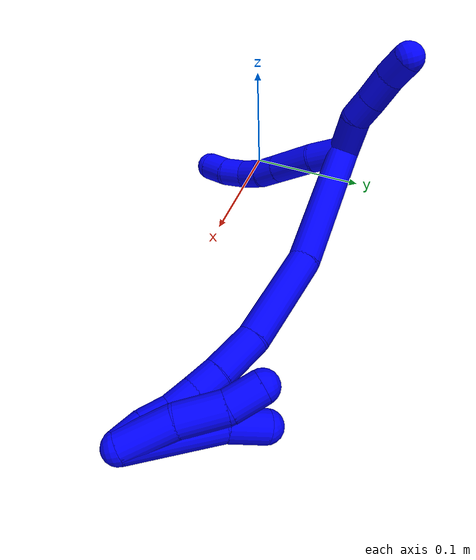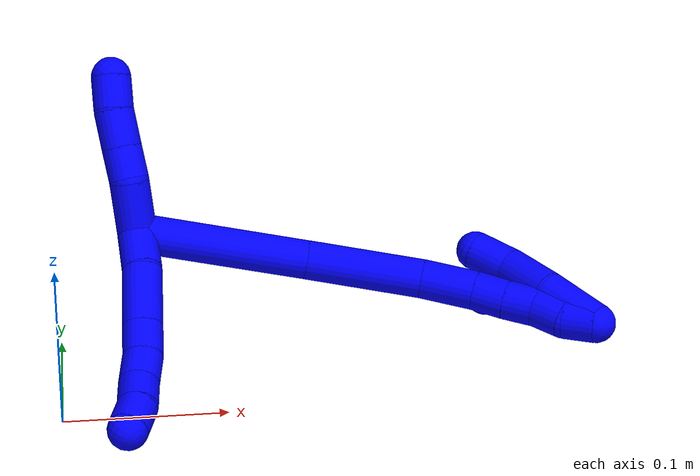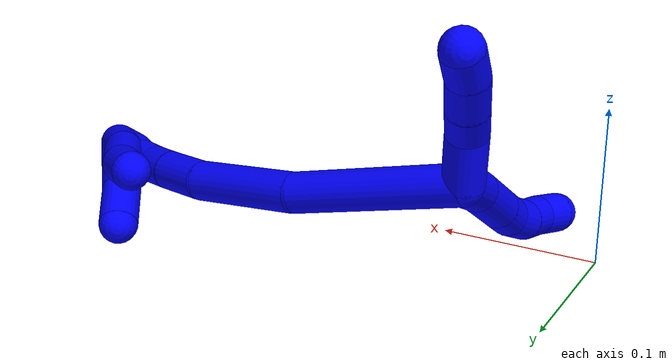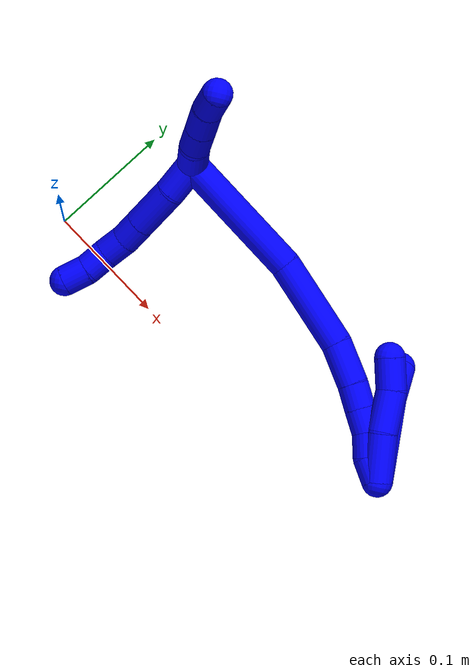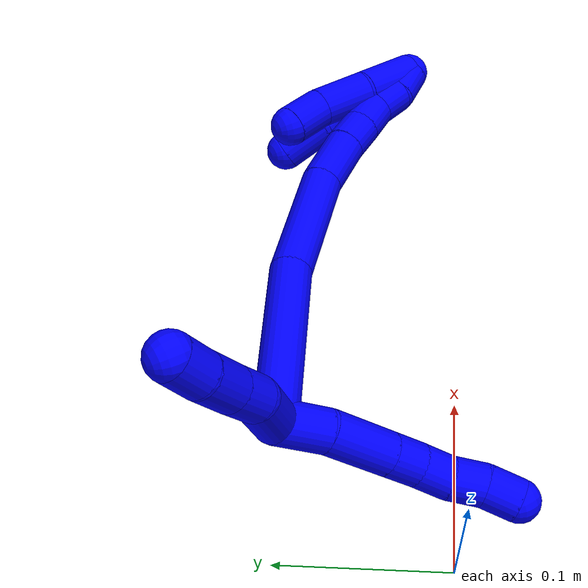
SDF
<sdf version="1.7">
 <world name="default">
  <model name="photoneo_s_sensor">
   <static>1</static>
   <pose>0 0 2 1.57079 1.57079 3.14159</pose>
   <link name="link">
    <inertial><mass>0.1</mass></inertial>
    <sensor name="sensor" type="depth">
     <update_rate>30</update_rate>
     <camera>
      <horizontal_fov>1.22</horizontal_fov>
      <image><width>1920</width><height>1200</height><format>B8G8R8</format></image>
      <clip><near>0.1</near><far>4</far></clip>
      <depth_camera><output>points</output></depth_camera>
     </camera>
     <plugin name="camera_plugin" filename="libgazebo_ros_depth_camera.so">
      <baseline>0.2</baseline>
      <alwaysOn>1</alwaysOn>
      <updateRate>0.0</updateRate>
      <cameraName>camera_ir</cameraName>
      <imageTopicName>/camera/color/image_raw</imageTopicName>
      <cameraInfoTopicName>/camera/color/camera_info</cameraInfoTopicName>
      <depthImageTopicName>/camera/depth/image_raw</depthImageTopicName>
      <depthImageCameraInfoTopicName>/camera/depth/camera_info</depthImageCameraInfoTopicName>
      <pointCloudTopicName>/camera/depth/points</pointCloudTopicName>
      <frameName>fr_optical</frameName>
      <pointCloudCutoff>0.1</pointCloudCutoff>
      <pointCloudCutoffMax>2.0</pointCloudCutoffMax>
      <distortionK1>0</distortionK1>
      <distortionK2>0</distortionK2>
      <distortionK3>0</distortionK3>
      <distortionT1>0</distortionT1>
      <distortionT2>0</distortionT2>
      <CxPrime>0</CxPrime>
      <Cx>0</Cx>
      <Cy>0</Cy>
      <focalLength>0</focalLength>
      <hackBaseline>0</hackBaseline>
     </plugin>
    </sensor>
   </link>
  </model>
  <model name="bin">
   <static>1</static>
   <link name="bottom">
    <collision name="collision-bottom">
     <pose>0 0 -0.01 0 -0 0</pose>
     <geometry><box><size>0.8 0.6 0.02</size></box></geometry>
     <surface>
      <friction><ode><mu>100</mu><mu2>100</mu2></ode></friction>
      <contact><collide_bitmask>65535</collide_bitmask></contact>
     </surface>
    </collision>
   </link>
   <link name="west_wall">
    <collision name="collision-west_wall">
     <pose>-0.41 0 0.1 0 -0 0</pose>
     <geometry><box><size>0.02 0.6 0.2</size></box></geometry>
     <surface>
      <friction><ode><mu>100</mu><mu2>100</mu2></ode></friction>
      <contact><collide_bitmask>65535</collide_bitmask></contact>
     </surface>
    </collision>
   </link>
   <link name="east_wall">
    <collision name="collision-east_wall">
     <pose>0.41 0 0.1 0 -0 0</pose>
     <geometry><box><size>0.02 0.6 0.2</size></box></geometry>
     <surface>
      <friction><ode><mu>100</mu><mu2>100</mu2></ode></friction>
      <contact><collide_bitmask>65535</collide_bitmask></contact>
     </surface>
    </collision>
   </link>
   <link name="south_wall">
    <collision name="collision-south_wall">
     <pose>0 -0.31 0.1 0 -0 0</pose>
     <geometry><box><size>0.8 0.02 0.2</size></box></geometry>
     <surface>
      <friction><ode><mu>100</mu><mu2>100</mu2></ode></friction>
      <contact><collide_bitmask>65535</collide_bitmask></contact>
     </surface>
    </collision>
   </link>
   <link name="north_wall">
    <collision name="collision-north_wall">
     <pose>0 0.31 0.1 0 -0 0</pose>
     <geometry><box><size>0.8 0.02 0.2</size></box></geometry>
     <surface>
      <friction><ode><mu>100</mu><mu2>100</mu2></ode></friction>
      <contact><collide_bitmask>65535</collide_bitmask></contact>
     </surface>
    </collision>
   </link>
  </model>
  <model name="1">
   <static>0</static>
   <link name="1">
    <collision name="collision-cylinder-e_1_2_8">
     <pose>0.00281 -0.007584 0.012271 0.553564 0.192383 0.054806</pose>
     <geometry><cylinder><radius>0.0125</radius><length>0.029392</length></cylinder></geometry>
     <surface>
      <friction><ode><mu>1.16</mu><mu2>1.16</mu2><slip1>0</slip1><slip2>0</slip2></ode></friction>
      <contact><ode><kp>1e+06</kp><kd>1</kd><max_vel>0</max_vel><min_depth>0.001</min_depth></ode></contact>
     </surface>
    </collision>
    <visual name="visual-cylinder-e_1_2_8">
     <pose>0.00281 -0.007584 0.012271 0.553564 0.192383 0.054806</pose>
     <geometry><cylinder><radius>0.0125</radius><length>0.029392</length></cylinder></geometry>
     <material><ambient>0 0 1 1</ambient></material>
    </visual>
    <collision name="collision-cylinder-e_2_8_9">
     <pose>0.01166 -0.02677 0.03903 0.675245 0.314589 0.111246</pose>
     <geometry><cylinder><radius>0.0125</radius><length>0.039039</length></cylinder></geometry>
     <surface>
      <friction><ode><mu>1.16</mu><mu2>1.16</mu2><slip1>0</slip1><slip2>0</slip2></ode></friction>
      <contact><ode><kp>1e+06</kp><kd>1</kd><max_vel>0</max_vel><min_depth>0.001</min_depth></ode></contact>
     </surface>
    </collision>
    <visual name="visual-cylinder-e_2_8_9">
     <pose>0.01166 -0.02677 0.03903 0.675245 0.314589 0.111246</pose>
     <geometry><cylinder><radius>0.0125</radius><length>0.039039</length></cylinder></geometry>
     <material><ambient>0 0 1 1</ambient></material>
    </visual>
    <collision name="collision-cylinder-e_3_9_10">
     <pose>0.020812 -0.044347 0.060979 0.675257 0.314768 0.111312</pose>
     <geometry><cylinder><radius>0.0125</radius><length>0.020105</length></cylinder></geometry>
     <surface>
      <friction><ode><mu>1.16</mu><mu2>1.16</mu2><slip1>0</slip1><slip2>0</slip2></ode></friction>
      <contact><ode><kp>1e+06</kp><kd>1</kd><max_vel>0</max_vel><min_depth>0.001</min_depth></ode></contact>
     </surface>
    </collision>
    <visual name="visual-cylinder-e_3_9_10">
     <pose>0.020812 -0.044347 0.060979 0.675257 0.314768 0.111312</pose>
     <geometry><cylinder><radius>0.0125</radius><length>0.020105</length></cylinder></geometry>
     <material><ambient>0 0 1 1</ambient></material>
    </visual>
    <collision name="collision-cylinder-e_4_10_11">
     <pose>0.025395 -0.05728 0.0755 0.77806 0.147378 0.060504</pose>
     <geometry><cylinder><radius>0.0125</radius><length>0.020042</length></cylinder></geometry>
     <surface>
      <friction><ode><mu>1.16</mu><mu2>1.16</mu2><slip1>0</slip1><slip2>0</slip2></ode></friction>
      <contact><ode><kp>1e+06</kp><kd>1</kd><max_vel>0</max_vel><min_depth>0.001</min_depth></ode></contact>
     </surface>
    </collision>
    <visual name="visual-cylinder-e_4_10_11">
     <pose>0.025395 -0.05728 0.0755 0.77806 0.147378 0.060504</pose>
     <geometry><cylinder><radius>0.0125</radius><length>0.020042</length></cylinder></geometry>
     <material><ambient>0 0 1 1</ambient></material>
    </visual>
    <collision name="collision-cylinder-e_5_11_12">
     <pose>0.026053 -0.070544 0.090691 0.659726 -0.078968 -0.027049</pose>
     <geometry><cylinder><radius>0.0125</radius><length>0.020644</length></cylinder></geometry>
     <surface>
      <friction><ode><mu>1.16</mu><mu2>1.16</mu2><slip1>0</slip1><slip2>0</slip2></ode></friction>
      <contact><ode><kp>1e+06</kp><kd>1</kd><max_vel>0</max_vel><min_depth>0.001</min_depth></ode></contact>
     </surface>
    </collision>
    <visual name="visual-cylinder-e_5_11_12">
     <pose>0.026053 -0.070544 0.090691 0.659726 -0.078968 -0.027049</pose>
     <geometry><cylinder><radius>0.0125</radius><length>0.020644</length></cylinder></geometry>
     <material><ambient>0 0 1 1</ambient></material>
    </visual>
    <collision name="collision-cylinder-e_6_12_6">
     <pose>0.023991 -0.084865 0.105313 0.890072 -0.12032 -0.05744</pose>
     <geometry><cylinder><radius>0.0125</radius><length>0.020779</length></cylinder></geometry>
     <surface>
      <friction><ode><mu>1.16</mu><mu2>1.16</mu2><slip1>0</slip1><slip2>0</slip2></ode></friction>
      <contact><ode><kp>1e+06</kp><kd>1</kd><max_vel>0</max_vel><min_depth>0.001</min_depth></ode></contact>
     </surface>
    </collision>
    <visual name="visual-cylinder-e_6_12_6">
     <pose>0.023991 -0.084865 0.105313 0.890072 -0.12032 -0.05744</pose>
     <geometry><cylinder><radius>0.0125</radius><length>0.020779</length></cylinder></geometry>
     <material><ambient>0 0 1 1</ambient></material>
    </visual>
    <collision name="collision-cylinder-e_1_2_13">
     <pose>-0.015124 0.004598 -0.006503 -2.52616 -1.0861 2.17229</pose>
     <geometry><cylinder><radius>0.0125</radius><length>0.034186</length></cylinder></geometry>
     <surface>
      <friction><ode><mu>1.16</mu><mu2>1.16</mu2><slip1>0</slip1><slip2>0</slip2></ode></friction>
      <contact><ode><kp>1e+06</kp><kd>1</kd><max_vel>0</max_vel><min_depth>0.001</min_depth></ode></contact>
     </surface>
    </collision>
    <visual name="visual-cylinder-e_1_2_13">
     <pose>-0.015124 0.004598 -0.006503 -2.52616 -1.0861 2.17229</pose>
     <geometry><cylinder><radius>0.0125</radius><length>0.034186</length></cylinder></geometry>
     <material><ambient>0 0 1 1</ambient></material>
    </visual>
    <collision name="collision-cylinder-e_2_13_14">
     <pose>-0.037337 0.012597 -0.019593 -2.66495 -0.763026 2.05258</pose>
     <geometry><cylinder><radius>0.0125</radius><length>0.020513</length></cylinder></geometry>
     <surface>
      <friction><ode><mu>1.16</mu><mu2>1.16</mu2><slip1>0</slip1><slip2>0</slip2></ode></friction>
      <contact><ode><kp>1e+06</kp><kd>1</kd><max_vel>0</max_vel><min_depth>0.001</min_depth></ode></contact>
     </surface>
    </collision>
    <visual name="visual-cylinder-e_2_13_14">
     <pose>-0.037337 0.012597 -0.019593 -2.66495 -0.763026 2.05258</pose>
     <geometry><cylinder><radius>0.0125</radius><length>0.020513</length></cylinder></geometry>
     <material><ambient>0 0 1 1</ambient></material>
    </visual>
    <collision name="collision-cylinder-e_3_14_15">
     <pose>-0.053139 0.019966 -0.033557 -2.64814 -0.805134 2.07335</pose>
     <geometry><cylinder><radius>0.0125</radius><length>0.024175</length></cylinder></geometry>
     <surface>
      <friction><ode><mu>1.16</mu><mu2>1.16</mu2><slip1>0</slip1><slip2>0</slip2></ode></friction>
      <contact><ode><kp>1e+06</kp><kd>1</kd><max_vel>0</max_vel><min_depth>0.001</min_depth></ode></contact>
     </surface>
    </collision>
    <visual name="visual-cylinder-e_3_14_15">
     <pose>-0.053139 0.019966 -0.033557 -2.64814 -0.805134 2.07335</pose>
     <geometry><cylinder><radius>0.0125</radius><length>0.024175</length></cylinder></geometry>
     <material><ambient>0 0 1 1</ambient></material>
    </visual>
    <collision name="collision-cylinder-e_4_15_5">
     <pose>-0.0688 0.028821 -0.047214 -2.48023 -0.717651 1.65922</pose>
     <geometry><cylinder><radius>0.0125</radius><length>0.021126</length></cylinder></geometry>
     <surface>
      <friction><ode><mu>1.16</mu><mu2>1.16</mu2><slip1>0</slip1><slip2>0</slip2></ode></friction>
      <contact><ode><kp>1e+06</kp><kd>1</kd><max_vel>0</max_vel><min_depth>0.001</min_depth></ode></contact>
     </surface>
    </collision>
    <visual name="visual-cylinder-e_4_15_5">
     <pose>-0.0688 0.028821 -0.047214 -2.48023 -0.717651 1.65922</pose>
     <geometry><cylinder><radius>0.0125</radius><length>0.021126</length></cylinder></geometry>
     <material><ambient>0 0 1 1</ambient></material>
    </visual>
    <collision name="collision-cylinder-e_1_2_16">
     <pose>0.019478 0.040897 0.030407 -0.931458 0.365075 -0.185024</pose>
     <geometry><cylinder><radius>0.0125</radius><length>0.109116</length></cylinder></geometry>
     <surface>
      <friction><ode><mu>1.16</mu><mu2>1.16</mu2><slip1>0</slip1><slip2>0</slip2></ode></friction>
      <contact><ode><kp>1e+06</kp><kd>1</kd><max_vel>0</max_vel><min_depth>0.001</min_depth></ode></contact>
     </surface>
    </collision>
    <visual name="visual-cylinder-e_1_2_16">
     <pose>0.019478 0.040897 0.030407 -0.931458 0.365075 -0.185024</pose>
     <geometry><cylinder><radius>0.0125</radius><length>0.109116</length></cylinder></geometry>
     <material><ambient>0 0 1 1</ambient></material>
    </visual>
    <collision name="collision-cylinder-e_2_16_17">
     <pose>0.047414 0.107274 0.086957 -0.772591 0.22766 -0.092931</pose>
     <geometry><cylinder><radius>0.0125</radius><length>0.074945</length></cylinder></geometry>
     <surface>
      <friction><ode><mu>1.16</mu><mu2>1.16</mu2><slip1>0</slip1><slip2>0</slip2></ode></friction>
      <contact><ode><kp>1e+06</kp><kd>1</kd><max_vel>0</max_vel><min_depth>0.001</min_depth></ode></contact>
     </surface>
    </collision>
    <visual name="visual-cylinder-e_2_16_17">
     <pose>0.047414 0.107274 0.086957 -0.772591 0.22766 -0.092931</pose>
     <geometry><cylinder><radius>0.0125</radius><length>0.074945</length></cylinder></geometry>
     <material><ambient>0 0 1 1</ambient></material>
    </visual>
    <collision name="collision-cylinder-e_3_17_18">
     <pose>0.058086 0.142483 0.12752 -0.593431 0.126649 -0.038769</pose>
     <geometry><cylinder><radius>0.0125</radius><length>0.035072</length></cylinder></geometry>
     <surface>
      <friction><ode><mu>1.16</mu><mu2>1.16</mu2><slip1>0</slip1><slip2>0</slip2></ode></friction>
      <contact><ode><kp>1e+06</kp><kd>1</kd><max_vel>0</max_vel><min_depth>0.001</min_depth></ode></contact>
     </surface>
    </collision>
    <visual name="visual-cylinder-e_3_17_18">
     <pose>0.058086 0.142483 0.12752 -0.593431 0.126649 -0.038769</pose>
     <geometry><cylinder><radius>0.0125</radius><length>0.035072</length></cylinder></geometry>
     <material><ambient>0 0 1 1</ambient></material>
    </visual>
    <collision name="collision-cylinder-e_4_18_19">
     <pose>0.061574 0.15703 0.150947 -0.491346 0.123982 -0.031124</pose>
     <geometry><cylinder><radius>0.0125</radius><length>0.020586</length></cylinder></geometry>
     <surface>
      <friction><ode><mu>1.16</mu><mu2>1.16</mu2><slip1>0</slip1><slip2>0</slip2></ode></friction>
      <contact><ode><kp>1e+06</kp><kd>1</kd><max_vel>0</max_vel><min_depth>0.001</min_depth></ode></contact>
     </surface>
    </collision>
    <visual name="visual-cylinder-e_4_18_19">
     <pose>0.061574 0.15703 0.150947 -0.491346 0.123982 -0.031124</pose>
     <geometry><cylinder><radius>0.0125</radius><length>0.020586</length></cylinder></geometry>
     <material><ambient>0 0 1 1</ambient></material>
    </visual>
    <collision name="collision-cylinder-e_5_19_20">
     <pose>0.063546 0.166853 0.16865 -0.522115 0.069497 -0.018573</pose>
     <geometry><cylinder><radius>0.0125</radius><length>0.020118</length></cylinder></geometry>
     <surface>
      <friction><ode><mu>1.16</mu><mu2>1.16</mu2><slip1>0</slip1><slip2>0</slip2></ode></friction>
      <contact><ode><kp>1e+06</kp><kd>1</kd><max_vel>0</max_vel><min_depth>0.001</min_depth></ode></contact>
     </surface>
    </collision>
    <visual name="visual-cylinder-e_5_19_20">
     <pose>0.063546 0.166853 0.16865 -0.522115 0.069497 -0.018573</pose>
     <geometry><cylinder><radius>0.0125</radius><length>0.020118</length></cylinder></geometry>
     <material><ambient>0 0 1 1</ambient></material>
    </visual>
    <collision name="collision-cylinder-e_6_20_21">
     <pose>0.064473 0.174454 0.187035 -0.261903 0.022851 -0.00301</pose>
     <geometry><cylinder><radius>0.0125</radius><length>0.020064</length></cylinder></geometry>
     <surface>
      <friction><ode><mu>1.16</mu><mu2>1.16</mu2><slip1>0</slip1><slip2>0</slip2></ode></friction>
      <contact><ode><kp>1e+06</kp><kd>1</kd><max_vel>0</max_vel><min_depth>0.001</min_depth></ode></contact>
     </surface>
    </collision>
    <visual name="visual-cylinder-e_6_20_21">
     <pose>0.064473 0.174454 0.187035 -0.261903 0.022851 -0.00301</pose>
     <geometry><cylinder><radius>0.0125</radius><length>0.020064</length></cylinder></geometry>
     <material><ambient>0 0 1 1</ambient></material>
    </visual>
    <collision name="collision-cylinder-e_7_21_1">
     <pose>0.064745 0.182688 0.205042 -0.595477 0.004241 -0.001302</pose>
     <geometry><cylinder><radius>0.0125</radius><length>0.0201</length></cylinder></geometry>
     <surface>
      <friction><ode><mu>1.16</mu><mu2>1.16</mu2><slip1>0</slip1><slip2>0</slip2></ode></friction>
      <contact><ode><kp>1e+06</kp><kd>1</kd><max_vel>0</max_vel><min_depth>0.001</min_depth></ode></contact>
     </surface>
    </collision>
    <visual name="visual-cylinder-e_7_21_1">
     <pose>0.064745 0.182688 0.205042 -0.595477 0.004241 -0.001302</pose>
     <geometry><cylinder><radius>0.0125</radius><length>0.0201</length></cylinder></geometry>
     <material><ambient>0 0 1 1</ambient></material>
    </visual>
    <collision name="collision-cylinder-e_1_1_22">
     <pose>0.062748 0.186413 0.193969 3.04331 -0.104282 -1.63009</pose>
     <geometry><cylinder><radius>0.0125</radius><length>0.039188</length></cylinder></geometry>
     <surface>
      <friction><ode><mu>1.16</mu><mu2>1.16</mu2><slip1>0</slip1><slip2>0</slip2></ode></friction>
      <contact><ode><kp>1e+06</kp><kd>1</kd><max_vel>0</max_vel><min_depth>0.001</min_depth></ode></contact>
     </surface>
    </collision>
    <visual name="visual-cylinder-e_1_1_22">
     <pose>0.062748 0.186413 0.193969 3.04331 -0.104282 -1.63009</pose>
     <geometry><cylinder><radius>0.0125</radius><length>0.039188</length></cylinder></geometry>
     <material><ambient>0 0 1 1</ambient></material>
    </visual>
    <collision name="collision-cylinder-e_2_22_23">
     <pose>0.061857 0.184059 0.157352 3.11598 0.066536 2.40683</pose>
     <geometry><cylinder><radius>0.0125</radius><length>0.034534</length></cylinder></geometry>
     <surface>
      <friction><ode><mu>1.16</mu><mu2>1.16</mu2><slip1>0</slip1><slip2>0</slip2></ode></friction>
      <contact><ode><kp>1e+06</kp><kd>1</kd><max_vel>0</max_vel><min_depth>0.001</min_depth></ode></contact>
     </surface>
    </collision>
    <visual name="visual-cylinder-e_2_22_23">
     <pose>0.061857 0.184059 0.157352 3.11598 0.066536 2.40683</pose>
     <geometry><cylinder><radius>0.0125</radius><length>0.034534</length></cylinder></geometry>
     <material><ambient>0 0 1 1</ambient></material>
    </visual>
    <collision name="collision-cylinder-e_3_23_4">
     <pose>0.061732 0.180361 0.127464 2.8899 -0.097039 -0.732945</pose>
     <geometry><cylinder><radius>0.0125</radius><length>0.026278</length></cylinder></geometry>
     <surface>
      <friction><ode><mu>1.16</mu><mu2>1.16</mu2><slip1>0</slip1><slip2>0</slip2></ode></friction>
      <contact><ode><kp>1e+06</kp><kd>1</kd><max_vel>0</max_vel><min_depth>0.001</min_depth></ode></contact>
     </surface>
    </collision>
    <visual name="visual-cylinder-e_3_23_4">
     <pose>0.061732 0.180361 0.127464 2.8899 -0.097039 -0.732945</pose>
     <geometry><cylinder><radius>0.0125</radius><length>0.026278</length></cylinder></geometry>
     <material><ambient>0 0 1 1</ambient></material>
    </visual>
    <collision name="collision-cylinder-e_1_1_24">
     <pose>0.073096 0.184047 0.17984 3.01465 0.241078 2.17516</pose>
     <geometry><cylinder><radius>0.0125</radius><length>0.069601</length></cylinder></geometry>
     <surface>
      <friction><ode><mu>1.16</mu><mu2>1.16</mu2><slip1>0</slip1><slip2>0</slip2></ode></friction>
      <contact><ode><kp>1e+06</kp><kd>1</kd><max_vel>0</max_vel><min_depth>0.001</min_depth></ode></contact>
     </surface>
    </collision>
    <visual name="visual-cylinder-e_1_1_24">
     <pose>0.073096 0.184047 0.17984 3.01465 0.241078 2.17516</pose>
     <geometry><cylinder><radius>0.0125</radius><length>0.069601</length></cylinder></geometry>
     <material><ambient>0 0 1 1</ambient></material>
    </visual>
    <collision name="collision-cylinder-e_2_24_3">
     <pose>0.089376 0.178394 0.13345 3.03521 0.552061 2.77002</pose>
     <geometry><cylinder><radius>0.0125</radius><length>0.030399</length></cylinder></geometry>
     <surface>
      <friction><ode><mu>1.16</mu><mu2>1.16</mu2><slip1>0</slip1><slip2>0</slip2></ode></friction>
      <contact><ode><kp>1e+06</kp><kd>1</kd><max_vel>0</max_vel><min_depth>0.001</min_depth></ode></contact>
     </surface>
    </collision>
    <visual name="visual-cylinder-e_2_24_3">
     <pose>0.089376 0.178394 0.13345 3.03521 0.552061 2.77002</pose>
     <geometry><cylinder><radius>0.0125</radius><length>0.030399</length></cylinder></geometry>
     <material><ambient>0 0 1 1</ambient></material>
    </visual>
    <collision name="collision-sphere-3">
     <pose>0.097348 0.17702 0.120581 0 -0 0</pose>
     <geometry><sphere><radius>0.0125</radius></sphere></geometry>
     <surface>
      <friction><ode><mu>1.16</mu><mu2>1.16</mu2><slip1>0</slip1><slip2>0</slip2></ode></friction>
      <contact><ode><kp>1e+06</kp><kd>1</kd><max_vel>0</max_vel><min_depth>0.001</min_depth></ode></contact>
     </surface>
    </collision>
    <visual name="visual-sphere-3">
     <pose>0.097348 0.17702 0.120581 0 -0 0</pose>
     <geometry><sphere><radius>0.0125</radius></sphere></geometry>
     <material><ambient>0 0 1 1</ambient></material>
    </visual>
    <collision name="collision-sphere-24">
     <pose>0.081405 0.179768 0.146318 0 -0 0</pose>
     <geometry><sphere><radius>0.0125</radius></sphere></geometry>
     <surface>
      <friction><ode><mu>1.16</mu><mu2>1.16</mu2><slip1>0</slip1><slip2>0</slip2></ode></friction>
      <contact><ode><kp>1e+06</kp><kd>1</kd><max_vel>0</max_vel><min_depth>0.001</min_depth></ode></contact>
     </surface>
    </collision>
    <visual name="visual-sphere-24">
     <pose>0.081405 0.179768 0.146318 0 -0 0</pose>
     <geometry><sphere><radius>0.0125</radius></sphere></geometry>
     <material><ambient>0 0 1 1</ambient></material>
    </visual>
    <collision name="collision-sphere-4">
     <pose>0.060459 0.177104 0.114799 0 -0 0</pose>
     <geometry><sphere><radius>0.0125</radius></sphere></geometry>
     <surface>
      <friction><ode><mu>1.16</mu><mu2>1.16</mu2><slip1>0</slip1><slip2>0</slip2></ode></friction>
      <contact><ode><kp>1e+06</kp><kd>1</kd><max_vel>0</max_vel><min_depth>0.001</min_depth></ode></contact>
     </surface>
    </collision>
    <visual name="visual-sphere-4">
     <pose>0.060459 0.177104 0.114799 0 -0 0</pose>
     <geometry><sphere><radius>0.0125</radius></sphere></geometry>
     <material><ambient>0 0 1 1</ambient></material>
    </visual>
    <collision name="collision-sphere-23">
     <pose>0.063005 0.183618 0.140129 0 -0 0</pose>
     <geometry><sphere><radius>0.0125</radius></sphere></geometry>
     <surface>
      <friction><ode><mu>1.16</mu><mu2>1.16</mu2><slip1>0</slip1><slip2>0</slip2></ode></friction>
      <contact><ode><kp>1e+06</kp><kd>1</kd><max_vel>0</max_vel><min_depth>0.001</min_depth></ode></contact>
     </surface>
    </collision>
    <visual name="visual-sphere-23">
     <pose>0.063005 0.183618 0.140129 0 -0 0</pose>
     <geometry><sphere><radius>0.0125</radius></sphere></geometry>
     <material><ambient>0 0 1 1</ambient></material>
    </visual>
    <collision name="collision-sphere-22">
     <pose>0.060709 0.1845 0.174575 0 -0 0</pose>
     <geometry><sphere><radius>0.0125</radius></sphere></geometry>
     <surface>
      <friction><ode><mu>1.16</mu><mu2>1.16</mu2><slip1>0</slip1><slip2>0</slip2></ode></friction>
      <contact><ode><kp>1e+06</kp><kd>1</kd><max_vel>0</max_vel><min_depth>0.001</min_depth></ode></contact>
     </surface>
    </collision>
    <visual name="visual-sphere-22">
     <pose>0.060709 0.1845 0.174575 0 -0 0</pose>
     <geometry><sphere><radius>0.0125</radius></sphere></geometry>
     <material><ambient>0 0 1 1</ambient></material>
    </visual>
    <collision name="collision-sphere-1">
     <pose>0.064788 0.188325 0.213362 0 -0 0</pose>
     <geometry><sphere><radius>0.0125</radius></sphere></geometry>
     <surface>
      <friction><ode><mu>1.16</mu><mu2>1.16</mu2><slip1>0</slip1><slip2>0</slip2></ode></friction>
      <contact><ode><kp>1e+06</kp><kd>1</kd><max_vel>0</max_vel><min_depth>0.001</min_depth></ode></contact>
     </surface>
    </collision>
    <visual name="visual-sphere-1">
     <pose>0.064788 0.188325 0.213362 0 -0 0</pose>
     <geometry><sphere><radius>0.0125</radius></sphere></geometry>
     <material><ambient>0 0 1 1</ambient></material>
    </visual>
    <collision name="collision-sphere-21">
     <pose>0.064703 0.177051 0.196722 0 -0 0</pose>
     <geometry><sphere><radius>0.0125</radius></sphere></geometry>
     <surface>
      <friction><ode><mu>1.16</mu><mu2>1.16</mu2><slip1>0</slip1><slip2>0</slip2></ode></friction>
      <contact><ode><kp>1e+06</kp><kd>1</kd><max_vel>0</max_vel><min_depth>0.001</min_depth></ode></contact>
     </surface>
    </collision>
    <visual name="visual-sphere-21">
     <pose>0.064703 0.177051 0.196722 0 -0 0</pose>
     <geometry><sphere><radius>0.0125</radius></sphere></geometry>
     <material><ambient>0 0 1 1</ambient></material>
    </visual>
    <collision name="collision-sphere-12">
     <pose>0.025238 -0.07685 0.098821 0 -0 0</pose>
     <geometry><sphere><radius>0.0125</radius></sphere></geometry>
     <surface>
      <friction><ode><mu>1.16</mu><mu2>1.16</mu2><slip1>0</slip1><slip2>0</slip2></ode></friction>
      <contact><ode><kp>1e+06</kp><kd>1</kd><max_vel>0</max_vel><min_depth>0.001</min_depth></ode></contact>
     </surface>
    </collision>
    <visual name="visual-sphere-12">
     <pose>0.025238 -0.07685 0.098821 0 -0 0</pose>
     <geometry><sphere><radius>0.0125</radius></sphere></geometry>
     <material><ambient>0 0 1 1</ambient></material>
    </visual>
    <collision name="collision-sphere-11">
     <pose>0.026867 -0.064237 0.08256 0 -0 0</pose>
     <geometry><sphere><radius>0.0125</radius></sphere></geometry>
     <surface>
      <friction><ode><mu>1.16</mu><mu2>1.16</mu2><slip1>0</slip1><slip2>0</slip2></ode></friction>
      <contact><ode><kp>1e+06</kp><kd>1</kd><max_vel>0</max_vel><min_depth>0.001</min_depth></ode></contact>
     </surface>
    </collision>
    <visual name="visual-sphere-11">
     <pose>0.026867 -0.064237 0.08256 0 -0 0</pose>
     <geometry><sphere><radius>0.0125</radius></sphere></geometry>
     <material><ambient>0 0 1 1</ambient></material>
    </visual>
    <collision name="collision-sphere-10">
     <pose>0.023924 -0.050322 0.06844 0 -0 0</pose>
     <geometry><sphere><radius>0.0125</radius></sphere></geometry>
     <surface>
      <friction><ode><mu>1.16</mu><mu2>1.16</mu2><slip1>0</slip1><slip2>0</slip2></ode></friction>
      <contact><ode><kp>1e+06</kp><kd>1</kd><max_vel>0</max_vel><min_depth>0.001</min_depth></ode></contact>
     </surface>
    </collision>
    <visual name="visual-sphere-10">
     <pose>0.023924 -0.050322 0.06844 0 -0 0</pose>
     <geometry><sphere><radius>0.0125</radius></sphere></geometry>
     <material><ambient>0 0 1 1</ambient></material>
    </visual>
    <collision name="collision-sphere-9">
     <pose>0.017699 -0.038372 0.053518 0 -0 0</pose>
     <geometry><sphere><radius>0.0125</radius></sphere></geometry>
     <surface>
      <friction><ode><mu>1.16</mu><mu2>1.16</mu2><slip1>0</slip1><slip2>0</slip2></ode></friction>
      <contact><ode><kp>1e+06</kp><kd>1</kd><max_vel>0</max_vel><min_depth>0.001</min_depth></ode></contact>
     </surface>
    </collision>
    <visual name="visual-sphere-9">
     <pose>0.017699 -0.038372 0.053518 0 -0 0</pose>
     <geometry><sphere><radius>0.0125</radius></sphere></geometry>
     <material><ambient>0 0 1 1</ambient></material>
    </visual>
    <collision name="collision-sphere-2">
     <geometry><sphere><radius>0.0125</radius></sphere></geometry>
     <surface>
      <friction><ode><mu>1.16</mu><mu2>1.16</mu2><slip1>0</slip1><slip2>0</slip2></ode></friction>
      <contact><ode><kp>1e+06</kp><kd>1</kd><max_vel>0</max_vel><min_depth>0.001</min_depth></ode></contact>
     </surface>
    </collision>
    <visual name="visual-sphere-2">
     <geometry><sphere><radius>0.0125</radius></sphere></geometry>
     <material><ambient>0 0 1 1</ambient></material>
    </visual>
    <collision name="collision-sphere-19">
     <pose>0.062847 0.161849 0.159952 0 -0 0</pose>
     <geometry><sphere><radius>0.0125</radius></sphere></geometry>
     <surface>
      <friction><ode><mu>1.16</mu><mu2>1.16</mu2><slip1>0</slip1><slip2>0</slip2></ode></friction>
      <contact><ode><kp>1e+06</kp><kd>1</kd><max_vel>0</max_vel><min_depth>0.001</min_depth></ode></contact>
     </surface>
    </collision>
    <visual name="visual-sphere-19">
     <pose>0.062847 0.161849 0.159952 0 -0 0</pose>
     <geometry><sphere><radius>0.0125</radius></sphere></geometry>
     <material><ambient>0 0 1 1</ambient></material>
    </visual>
    <collision name="collision-sphere-8">
     <pose>0.00562 -0.015167 0.024541 0 -0 0</pose>
     <geometry><sphere><radius>0.0125</radius></sphere></geometry>
     <surface>
      <friction><ode><mu>1.16</mu><mu2>1.16</mu2><slip1>0</slip1><slip2>0</slip2></ode></friction>
      <contact><ode><kp>1e+06</kp><kd>1</kd><max_vel>0</max_vel><min_depth>0.001</min_depth></ode></contact>
     </surface>
    </collision>
    <visual name="visual-sphere-8">
     <pose>0.00562 -0.015167 0.024541 0 -0 0</pose>
     <geometry><sphere><radius>0.0125</radius></sphere></geometry>
     <material><ambient>0 0 1 1</ambient></material>
    </visual>
    <collision name="collision-sphere-6">
     <pose>0.022744 -0.092881 0.111804 0 -0 0</pose>
     <geometry><sphere><radius>0.0125</radius></sphere></geometry>
     <surface>
      <friction><ode><mu>1.16</mu><mu2>1.16</mu2><slip1>0</slip1><slip2>0</slip2></ode></friction>
      <contact><ode><kp>1e+06</kp><kd>1</kd><max_vel>0</max_vel><min_depth>0.001</min_depth></ode></contact>
     </surface>
    </collision>
    <visual name="visual-sphere-6">
     <pose>0.022744 -0.092881 0.111804 0 -0 0</pose>
     <geometry><sphere><radius>0.0125</radius></sphere></geometry>
     <material><ambient>0 0 1 1</ambient></material>
    </visual>
    <collision name="collision-sphere-13">
     <pose>-0.030248 0.009196 -0.013006 0 -0 0</pose>
     <geometry><sphere><radius>0.0125</radius></sphere></geometry>
     <surface>
      <friction><ode><mu>1.16</mu><mu2>1.16</mu2><slip1>0</slip1><slip2>0</slip2></ode></friction>
      <contact><ode><kp>1e+06</kp><kd>1</kd><max_vel>0</max_vel><min_depth>0.001</min_depth></ode></contact>
     </surface>
    </collision>
    <visual name="visual-sphere-13">
     <pose>-0.030248 0.009196 -0.013006 0 -0 0</pose>
     <geometry><sphere><radius>0.0125</radius></sphere></geometry>
     <material><ambient>0 0 1 1</ambient></material>
    </visual>
    <collision name="collision-sphere-14">
     <pose>-0.044425 0.015998 -0.026179 0 -0 0</pose>
     <geometry><sphere><radius>0.0125</radius></sphere></geometry>
     <surface>
      <friction><ode><mu>1.16</mu><mu2>1.16</mu2><slip1>0</slip1><slip2>0</slip2></ode></friction>
      <contact><ode><kp>1e+06</kp><kd>1</kd><max_vel>0</max_vel><min_depth>0.001</min_depth></ode></contact>
     </surface>
    </collision>
    <visual name="visual-sphere-14">
     <pose>-0.044425 0.015998 -0.026179 0 -0 0</pose>
     <geometry><sphere><radius>0.0125</radius></sphere></geometry>
     <material><ambient>0 0 1 1</ambient></material>
    </visual>
    <collision name="collision-sphere-15">
     <pose>-0.061853 0.023933 -0.040934 0 -0 0</pose>
     <geometry><sphere><radius>0.0125</radius></sphere></geometry>
     <surface>
      <friction><ode><mu>1.16</mu><mu2>1.16</mu2><slip1>0</slip1><slip2>0</slip2></ode></friction>
      <contact><ode><kp>1e+06</kp><kd>1</kd><max_vel>0</max_vel><min_depth>0.001</min_depth></ode></contact>
     </surface>
    </collision>
    <visual name="visual-sphere-15">
     <pose>-0.061853 0.023933 -0.040934 0 -0 0</pose>
     <geometry><sphere><radius>0.0125</radius></sphere></geometry>
     <material><ambient>0 0 1 1</ambient></material>
    </visual>
    <collision name="collision-sphere-5">
     <pose>-0.075746 0.033709 -0.053494 0 -0 0</pose>
     <geometry><sphere><radius>0.0125</radius></sphere></geometry>
     <surface>
      <friction><ode><mu>1.16</mu><mu2>1.16</mu2><slip1>0</slip1><slip2>0</slip2></ode></friction>
      <contact><ode><kp>1e+06</kp><kd>1</kd><max_vel>0</max_vel><min_depth>0.001</min_depth></ode></contact>
     </surface>
    </collision>
    <visual name="visual-sphere-5">
     <pose>-0.075746 0.033709 -0.053494 0 -0 0</pose>
     <geometry><sphere><radius>0.0125</radius></sphere></geometry>
     <material><ambient>0 0 1 1</ambient></material>
    </visual>
    <collision name="collision-sphere-16">
     <pose>0.038956 0.081794 0.060815 0 -0 0</pose>
     <geometry><sphere><radius>0.0125</radius></sphere></geometry>
     <surface>
      <friction><ode><mu>1.16</mu><mu2>1.16</mu2><slip1>0</slip1><slip2>0</slip2></ode></friction>
      <contact><ode><kp>1e+06</kp><kd>1</kd><max_vel>0</max_vel><min_depth>0.001</min_depth></ode></contact>
     </surface>
    </collision>
    <visual name="visual-sphere-16">
     <pose>0.038956 0.081794 0.060815 0 -0 0</pose>
     <geometry><sphere><radius>0.0125</radius></sphere></geometry>
     <material><ambient>0 0 1 1</ambient></material>
    </visual>
    <collision name="collision-sphere-17">
     <pose>0.055871 0.132755 0.113098 0 -0 0</pose>
     <geometry><sphere><radius>0.0125</radius></sphere></geometry>
     <surface>
      <friction><ode><mu>1.16</mu><mu2>1.16</mu2><slip1>0</slip1><slip2>0</slip2></ode></friction>
      <contact><ode><kp>1e+06</kp><kd>1</kd><max_vel>0</max_vel><min_depth>0.001</min_depth></ode></contact>
     </surface>
    </collision>
    <visual name="visual-sphere-17">
     <pose>0.055871 0.132755 0.113098 0 -0 0</pose>
     <geometry><sphere><radius>0.0125</radius></sphere></geometry>
     <material><ambient>0 0 1 1</ambient></material>
    </visual>
    <collision name="collision-sphere-18">
     <pose>0.060301 0.152211 0.141941 0 -0 0</pose>
     <geometry><sphere><radius>0.0125</radius></sphere></geometry>
     <surface>
      <friction><ode><mu>1.16</mu><mu2>1.16</mu2><slip1>0</slip1><slip2>0</slip2></ode></friction>
      <contact><ode><kp>1e+06</kp><kd>1</kd><max_vel>0</max_vel><min_depth>0.001</min_depth></ode></contact>
     </surface>
    </collision>
    <visual name="visual-sphere-18">
     <pose>0.060301 0.152211 0.141941 0 -0 0</pose>
     <geometry><sphere><radius>0.0125</radius></sphere></geometry>
     <material><ambient>0 0 1 1</ambient></material>
    </visual>
    <collision name="collision-sphere-20">
     <pose>0.064244 0.171857 0.177348 0 -0 0</pose>
     <geometry><sphere><radius>0.0125</radius></sphere></geometry>
     <surface>
      <friction><ode><mu>1.16</mu><mu2>1.16</mu2><slip1>0</slip1><slip2>0</slip2></ode></friction>
      <contact><ode><kp>1e+06</kp><kd>1</kd><max_vel>0</max_vel><min_depth>0.001</min_depth></ode></contact>
     </surface>
    </collision>
    <visual name="visual-sphere-20">
     <pose>0.064244 0.171857 0.177348 0 -0 0</pose>
     <geometry><sphere><radius>0.0125</radius></sphere></geometry>
     <material><ambient>0 0 1 1</ambient></material>
    </visual>
    <inertial>
     <pose>0.033812 0.083833 0.090521 0 -0 0</pose>
     <mass>0.75</mass>
     <inertia>
      <ixx>0.000149</ixx>
      <ixy>0</ixy>
      <ixz>0</ixz>
      <iyy>0.000165</iyy>
      <iyz>0</iyz>
      <izz>-0.000151</izz>
     </inertia>
    </inertial>
   </link>
   <pose>0.050786 0.096536 0.07723 2.13569 1.25132 1.13047</pose>
  </model>
 </world>
</sdf>
